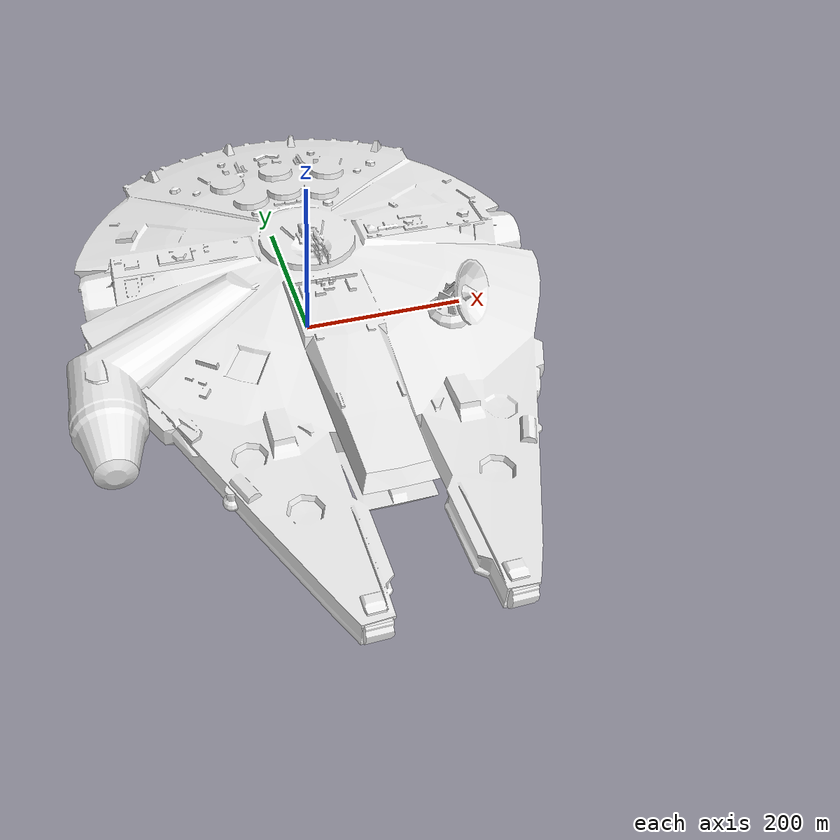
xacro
<?xml version="1.0"?>

<!--

Gazebo Multirotor Definition File
Author: James Jackson

-->

<robot name="Millennium_Falcon" xmlns:xacro="http://ros.org/wiki/xacro">

  <!-- Properties -->
  <xacro:property name="namespace" value="Millennium_Falcon" />
  <xacro:property name="color" value="White" />
  <xacro:property name="mass" value="1" />
  <xacro:property name="body_width" value="0.46" />
  <xacro:property name="body_height" value="0.16" />
  <xacro:property name="body_inertia">
    <inertia ixx="1" ixy="0.0" ixz="0.0" iyy="1" iyz="0.0" izz="1" />
  </xacro:property>
  <xacro:property name="use_mesh_file" value="true" />
  <xacro:property name="mesh_file" value="package://magicc_sim/meshes/Millennium_Falcon.dae" />

  <!-- *********************** GAZEBO ROBOT DEFINITION ******************* -->

  <link name="${namespace}/base_link">
    <inertial>
      <mass value="${mass}" />  <!-- [kg] -->
      <origin xyz="0 0 0" />
      <xacro:insert_block name="body_inertia" />
    </inertial>

    <visual>
      <origin xyz="0 0 0" rpy="0 0 0" />
      <geometry>
        <xacro:if value="${use_mesh_file}">
          <mesh filename="${mesh_file}" scale="1 1 1" />
        </xacro:if>
        <xacro:unless value="${use_mesh_file}">
          <cylinder length="${body_height}" radius="${body_width/2}"/>
        </xacro:unless>
      </geometry>
    </visual>

    <collision>
      <origin xyz="0 0 0" rpy="0 0 0" />
      <geometry>
        <cylinder length="${body_height}" radius="${body_width/2}"/>
      </geometry>
    </collision>
  </link>

  <gazebo reference="${namespace}/base_link">
    <material>Gazebo/${color}</material>
  </gazebo>

</robot>
